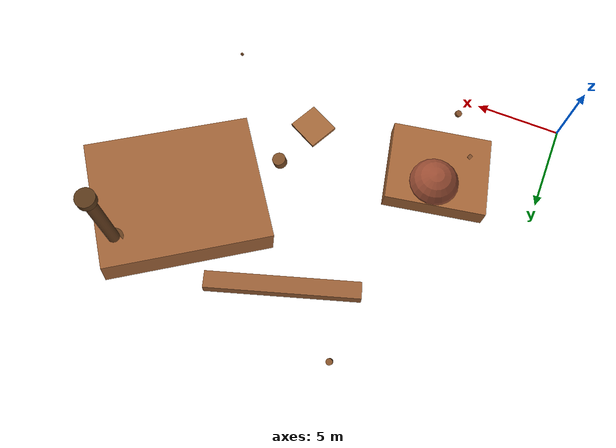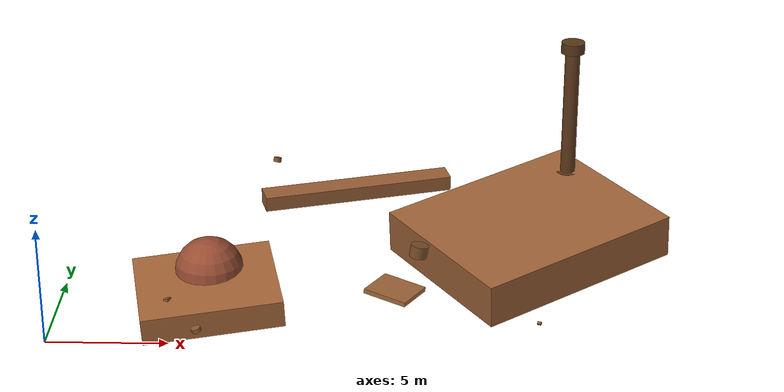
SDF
<sdf version="1.9">
 <world name="mars_test_world">
  <model name="hill_1">
   <static>true</static>
   <pose>6 5 -0.3 0.08 -0.06 0.2</pose>
   <link name="link">
    <collision name="col">
     <geometry><box><size>6.0 5.0 1.2</size></box></geometry>
     <surface>
      <friction><ode><mu>1.0</mu><mu2>0.8</mu2></ode></friction>
      <contact><ode><kp>1e6</kp><kd>100</kd><max_vel>0.1</max_vel><min_depth>0.002</min_depth></ode></contact>
     </surface>
    </collision>
    <visual name="vis">
     <geometry><box><size>6.0 5.0 1.2</size></box></geometry>
     <material><ambient>0.58 0.36 0.20 1</ambient><diffuse>0.65 0.40 0.22 1</diffuse></material>
    </visual>
   </link>
  </model>
  <model name="rf_rock_8">
   <static>true</static>
   <pose>4.5 3.5 0.09 -0.3 0.1 1.1</pose>
   <link name="link">
    <collision name="col">
     <geometry><box><size>0.28 0.22 0.16</size></box></geometry>
     <surface>
      <friction><ode><mu>0.9</mu><mu2>0.7</mu2></ode></friction>
      <contact><ode><kp>1e6</kp><kd>100</kd><max_vel>0.1</max_vel><min_depth>0.002</min_depth></ode></contact>
     </surface>
    </collision>
    <visual name="vis">
     <geometry><box><size>0.28 0.22 0.16</size></box></geometry>
     <material><ambient>0.50 0.31 0.16 1</ambient><diffuse>0.55 0.34 0.19 1</diffuse></material>
    </visual>
   </link>
  </model>
  <model name="rock_med_4">
   <static>true</static>
   <pose>6.0 1.0 0.10 0.1 -0.3 -0.2</pose>
   <link name="link">
    <collision name="col">
     <geometry><cylinder><radius>0.20</radius><length>0.18</length></cylinder></geometry>
     <surface>
      <friction><ode><mu>0.9</mu><mu2>0.7</mu2></ode></friction>
      <contact><ode><kp>1e6</kp><kd>100</kd><max_vel>0.1</max_vel><min_depth>0.002</min_depth></ode></contact>
     </surface>
    </collision>
    <visual name="vis">
     <geometry><cylinder><radius>0.20</radius><length>0.18</length></cylinder></geometry>
     <material><ambient>0.50 0.31 0.16 1</ambient><diffuse>0.55 0.34 0.18 1</diffuse></material>
    </visual>
   </link>
  </model>
  <model name="hill_5">
   <static>true</static>
   <pose>20 12 -0.8 0.05 -0.08 0.6</pose>
   <link name="link">
    <collision name="col">
     <geometry><box><size>10.0 8.0 2.0</size></box></geometry>
     <surface>
      <friction><ode><mu>1.0</mu><mu2>0.8</mu2></ode></friction>
      <contact><ode><kp>1e6</kp><kd>100</kd><max_vel>0.1</max_vel><min_depth>0.002</min_depth></ode></contact>
     </surface>
    </collision>
    <visual name="vis">
     <geometry><box><size>10.0 8.0 2.0</size></box></geometry>
     <material><ambient>0.57 0.35 0.20 1</ambient><diffuse>0.63 0.39 0.22 1</diffuse></material>
    </visual>
   </link>
  </model>
  <model name="ridge_4">
   <static>true</static>
   <pose>12 15 -0.05 0.08 0.0 0.3</pose>
   <link name="link">
    <collision name="col">
     <geometry><box><size>9.0 1.0 0.7</size></box></geometry>
     <surface>
      <friction><ode><mu>1.0</mu><mu2>0.8</mu2></ode></friction>
      <contact><ode><kp>1e6</kp><kd>100</kd><max_vel>0.1</max_vel><min_depth>0.002</min_depth></ode></contact>
     </surface>
    </collision>
    <visual name="vis">
     <geometry><box><size>9.0 1.0 0.7</size></box></geometry>
     <material><ambient>0.54 0.33 0.19 1</ambient><diffuse>0.60 0.37 0.21 1</diffuse></material>
    </visual>
   </link>
  </model>
  <model name="landmark_pillar">
   <static>true</static>
   <pose>22 16 0 0.0 0.0 0.3</pose>
   <link name="link">
    <collision name="col_base">
     <pose>0 0 0.3 0 0 0</pose>
     <geometry><cylinder><radius>0.55</radius><length>0.6</length></cylinder></geometry>
     <surface>
      <friction><ode><mu>1.0</mu><mu2>0.8</mu2></ode></friction>
      <contact><ode><kp>1e6</kp><kd>100</kd><max_vel>0.1</max_vel><min_depth>0.002</min_depth></ode></contact>
     </surface>
    </collision>
    <visual name="vis_base">
     <pose>0 0 0.3 0 0 0</pose>
     <geometry><cylinder><radius>0.55</radius><length>0.6</length></cylinder></geometry>
     <material><ambient>0.35 0.22 0.10 1</ambient><diffuse>0.40 0.25 0.12 1</diffuse></material>
    </visual>
    <collision name="col_shaft">
     <pose>0 0 3.6 0 0 0</pose>
     <geometry><cylinder><radius>0.35</radius><length>6.0</length></cylinder></geometry>
     <surface>
      <friction><ode><mu>1.0</mu><mu2>0.8</mu2></ode></friction>
      <contact><ode><kp>1e6</kp><kd>100</kd><max_vel>0.1</max_vel><min_depth>0.002</min_depth></ode></contact>
     </surface>
    </collision>
    <visual name="vis_shaft">
     <pose>0 0 3.6 0 0 0</pose>
     <geometry><cylinder><radius>0.35</radius><length>6.0</length></cylinder></geometry>
     <material><ambient>0.33 0.20 0.09 1</ambient><diffuse>0.38 0.23 0.11 1</diffuse></material>
    </visual>
    <collision name="col_cap">
     <pose>0 0 6.85 0 0 0</pose>
     <geometry><cylinder><radius>0.55</radius><length>0.50</length></cylinder></geometry>
     <surface>
      <friction><ode><mu>1.0</mu><mu2>0.8</mu2></ode></friction>
      <contact><ode><kp>1e6</kp><kd>100</kd><max_vel>0.1</max_vel><min_depth>0.002</min_depth></ode></contact>
     </surface>
    </collision>
    <visual name="vis_cap">
     <pose>0 0 6.85 0 0 0</pose>
     <geometry><cylinder><radius>0.55</radius><length>0.50</length></cylinder></geometry>
     <material><ambient>0.30 0.18 0.08 1</ambient><diffuse>0.35 0.22 0.10 1</diffuse></material>
    </visual>
   </link>
  </model>
  <model name="boulder_4">
   <static>true</static>
   <pose>15 8 0.28 -0.15 0.1 -0.7</pose>
   <link name="link">
    <collision name="col">
     <geometry><cylinder><radius>0.40</radius><length>0.55</length></cylinder></geometry>
     <surface>
      <friction><ode><mu>0.9</mu><mu2>0.7</mu2></ode></friction>
      <contact><ode><kp>1e6</kp><kd>100</kd><max_vel>0.1</max_vel><min_depth>0.002</min_depth></ode></contact>
     </surface>
    </collision>
    <visual name="vis">
     <geometry><cylinder><radius>0.40</radius><length>0.55</length></cylinder></geometry>
     <material><ambient>0.42 0.26 0.13 1</ambient><diffuse>0.48 0.30 0.15 1</diffuse></material>
    </visual>
   </link>
  </model>
  <model name="rock_s_10">
   <static>true</static>
   <pose>20 2 0.05 0.5 -0.1 -0.4</pose>
   <link name="link">
    <collision name="col">
     <geometry><box><size>0.16 0.12 0.10</size></box></geometry>
     <surface>
      <friction><ode><mu>0.9</mu><mu2>0.7</mu2></ode></friction>
      <contact><ode><kp>1e6</kp><kd>100</kd><max_vel>0.1</max_vel><min_depth>0.002</min_depth></ode></contact>
     </surface>
    </collision>
    <visual name="vis">
     <geometry><box><size>0.16 0.12 0.10</size></box></geometry>
     <material><ambient>0.50 0.31 0.16 1</ambient><diffuse>0.55 0.34 0.18 1</diffuse></material>
    </visual>
   </link>
  </model>
  <model name="rock_m_6">
   <static>true</static>
   <pose>8 18 0.09 -0.3 0.1 -0.2</pose>
   <link name="link">
    <collision name="col">
     <geometry><cylinder><radius>0.19</radius><length>0.22</length></cylinder></geometry>
     <surface>
      <friction><ode><mu>0.9</mu><mu2>0.7</mu2></ode></friction>
      <contact><ode><kp>1e6</kp><kd>100</kd><max_vel>0.1</max_vel><min_depth>0.002</min_depth></ode></contact>
     </surface>
    </collision>
    <visual name="vis">
     <geometry><cylinder><radius>0.19</radius><length>0.22</length></cylinder></geometry>
     <material><ambient>0.46 0.28 0.14 1</ambient><diffuse>0.52 0.32 0.16 1</diffuse></material>
    </visual>
   </link>
  </model>
  <model name="micro_bump_2">
   <static>true</static>
   <pose>14 5 -0.10 -0.04 0.07 -0.5</pose>
   <link name="link">
    <collision name="col">
     <geometry><box><size>2.0 1.8 0.20</size></box></geometry>
     <surface>
      <friction><ode><mu>1.0</mu><mu2>0.8</mu2></ode></friction>
      <contact><ode><kp>1e6</kp><kd>100</kd><max_vel>0.1</max_vel><min_depth>0.002</min_depth></ode></contact>
     </surface>
    </collision>
    <visual name="vis">
     <geometry><box><size>2.0 1.8 0.20</size></box></geometry>
     <material><ambient>0.58 0.36 0.20 1</ambient><diffuse>0.63 0.40 0.22 1</diffuse></material>
    </visual>
   </link>
  </model>
  <model name="slam_uneven_terrain_bump">
   <static>true</static>
   <pose>6 6 0.2 0 0 0</pose>
   <link name="link">
    <collision name="col"><geometry><sphere><radius>1.5</radius></sphere></geometry></collision>
    <visual name="vis">
     <geometry><sphere><radius>1.5</radius></sphere></geometry>
     <material><ambient>0.4 0.2 0.1 1</ambient><diffuse>0.6 0.3 0.2 1</diffuse></material>
    </visual>
   </link>
  </model>
 </world>
</sdf>
